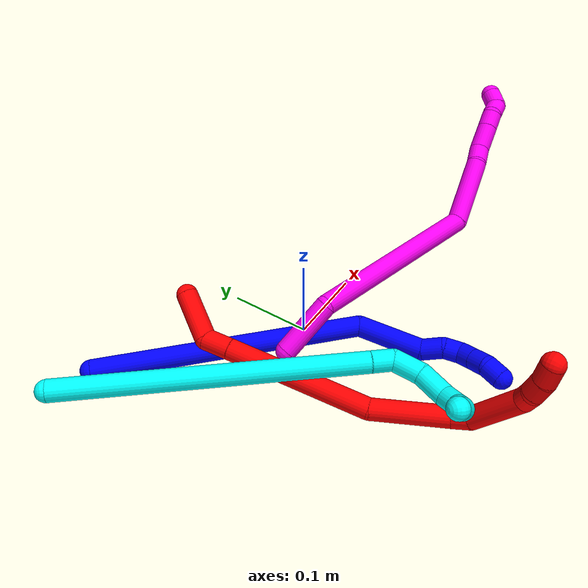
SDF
<sdf version="1.7">
 <world name="default">
  <model name="1">
   <static>0</static>
   <link name="1">
    <collision name="collision-cylinder-e_1_1_4">
     <pose>0.115929 -0.083799 0.064862 0.9121 0.830254 0.425846</pose>
     <geometry><cylinder><radius>0.0125</radius><length>0.314126</length></cylinder></geometry>
     <surface>
      <friction><ode><mu>1.16</mu><mu2>1.16</mu2><slip1>0</slip1><slip2>0</slip2></ode></friction>
      <contact><ode><kp>1e+06</kp><kd>1</kd><max_vel>0</max_vel><min_depth>0.001</min_depth></ode></contact>
     </surface>
    </collision>
    <visual name="visual-cylinder-e_1_1_4">
     <pose>0.115929 -0.083799 0.064862 0.9121 0.830254 0.425846</pose>
     <geometry><cylinder><radius>0.0125</radius><length>0.314126</length></cylinder></geometry>
     <material><ambient>0 0 1 1</ambient></material>
    </visual>
    <collision name="collision-cylinder-e_2_4_5">
     <pose>0.238741 -0.195018 0.157194 0.784486 0.175518 0.072763</pose>
     <geometry><cylinder><radius>0.0125</radius><length>0.078838</length></cylinder></geometry>
     <surface>
      <friction><ode><mu>1.16</mu><mu2>1.16</mu2><slip1>0</slip1><slip2>0</slip2></ode></friction>
      <contact><ode><kp>1e+06</kp><kd>1</kd><max_vel>0</max_vel><min_depth>0.001</min_depth></ode></contact>
     </surface>
    </collision>
    <visual name="visual-cylinder-e_2_4_5">
     <pose>0.238741 -0.195018 0.157194 0.784486 0.175518 0.072763</pose>
     <geometry><cylinder><radius>0.0125</radius><length>0.078838</length></cylinder></geometry>
     <material><ambient>0 0 1 1</ambient></material>
    </visual>
    <collision name="collision-cylinder-e_3_5_6">
     <pose>0.252108 -0.227545 0.194391 0.483431 0.533252 0.134469</pose>
     <geometry><cylinder><radius>0.0125</radius><length>0.025511</length></cylinder></geometry>
     <surface>
      <friction><ode><mu>1.16</mu><mu2>1.16</mu2><slip1>0</slip1><slip2>0</slip2></ode></friction>
      <contact><ode><kp>1e+06</kp><kd>1</kd><max_vel>0</max_vel><min_depth>0.001</min_depth></ode></contact>
     </surface>
    </collision>
    <visual name="visual-cylinder-e_3_5_6">
     <pose>0.252108 -0.227545 0.194391 0.483431 0.533252 0.134469</pose>
     <geometry><cylinder><radius>0.0125</radius><length>0.025511</length></cylinder></geometry>
     <material><ambient>0 0 1 1</ambient></material>
    </visual>
    <collision name="collision-cylinder-e_4_6_7">
     <pose>0.261624 -0.240184 0.210418 0.874201 0.299368 0.140699</pose>
     <geometry><cylinder><radius>0.0125</radius><length>0.020557</length></cylinder></geometry>
     <surface>
      <friction><ode><mu>1.16</mu><mu2>1.16</mu2><slip1>0</slip1><slip2>0</slip2></ode></friction>
      <contact><ode><kp>1e+06</kp><kd>1</kd><max_vel>0</max_vel><min_depth>0.001</min_depth></ode></contact>
     </surface>
    </collision>
    <visual name="visual-cylinder-e_4_6_7">
     <pose>0.261624 -0.240184 0.210418 0.874201 0.299368 0.140699</pose>
     <geometry><cylinder><radius>0.0125</radius><length>0.020557</length></cylinder></geometry>
     <material><ambient>0 0 1 1</ambient></material>
    </visual>
    <collision name="collision-cylinder-e_5_7_8">
     <pose>0.262576 -0.250672 0.22627 0.300043 -0.205005 -0.031095</pose>
     <geometry><cylinder><radius>0.0125</radius><length>0.020423</length></cylinder></geometry>
     <surface>
      <friction><ode><mu>1.16</mu><mu2>1.16</mu2><slip1>0</slip1><slip2>0</slip2></ode></friction>
      <contact><ode><kp>1e+06</kp><kd>1</kd><max_vel>0</max_vel><min_depth>0.001</min_depth></ode></contact>
     </surface>
    </collision>
    <visual name="visual-cylinder-e_5_7_8">
     <pose>0.262576 -0.250672 0.22627 0.300043 -0.205005 -0.031095</pose>
     <geometry><cylinder><radius>0.0125</radius><length>0.020423</length></cylinder></geometry>
     <material><ambient>0 0 1 1</ambient></material>
    </visual>
    <collision name="collision-cylinder-e_6_8_9">
     <pose>0.258176 -0.256076 0.245378 0.250825 -0.231144 -0.02927</pose>
     <geometry><cylinder><radius>0.0125</radius><length>0.02027</length></cylinder></geometry>
     <surface>
      <friction><ode><mu>1.16</mu><mu2>1.16</mu2><slip1>0</slip1><slip2>0</slip2></ode></friction>
      <contact><ode><kp>1e+06</kp><kd>1</kd><max_vel>0</max_vel><min_depth>0.001</min_depth></ode></contact>
     </surface>
    </collision>
    <visual name="visual-cylinder-e_6_8_9">
     <pose>0.258176 -0.256076 0.245378 0.250825 -0.231144 -0.02927</pose>
     <geometry><cylinder><radius>0.0125</radius><length>0.02027</length></cylinder></geometry>
     <material><ambient>0 0 1 1</ambient></material>
    </visual>
    <collision name="collision-cylinder-e_7_9_2">
     <pose>0.253202 -0.265031 0.262241 0.727573 -0.264707 -0.101289</pose>
     <geometry><cylinder><radius>0.0125</radius><length>0.020274</length></cylinder></geometry>
     <surface>
      <friction><ode><mu>1.16</mu><mu2>1.16</mu2><slip1>0</slip1><slip2>0</slip2></ode></friction>
      <contact><ode><kp>1e+06</kp><kd>1</kd><max_vel>0</max_vel><min_depth>0.001</min_depth></ode></contact>
     </surface>
    </collision>
    <visual name="visual-cylinder-e_7_9_2">
     <pose>0.253202 -0.265031 0.262241 0.727573 -0.264707 -0.101289</pose>
     <geometry><cylinder><radius>0.0125</radius><length>0.020274</length></cylinder></geometry>
     <material><ambient>0 0 1 1</ambient></material>
    </visual>
    <collision name="collision-sphere-2">
     <pose>0.25055 -0.271538 0.269548 0 -0 0</pose>
     <geometry><sphere><radius>0.0125</radius></sphere></geometry>
     <surface>
      <friction><ode><mu>1.16</mu><mu2>1.16</mu2><slip1>0</slip1><slip2>0</slip2></ode></friction>
      <contact><ode><kp>1e+06</kp><kd>1</kd><max_vel>0</max_vel><min_depth>0.001</min_depth></ode></contact>
     </surface>
    </collision>
    <visual name="visual-sphere-2">
     <pose>0.25055 -0.271538 0.269548 0 -0 0</pose>
     <geometry><sphere><radius>0.0125</radius></sphere></geometry>
     <material><ambient>0 0 1 1</ambient></material>
    </visual>
    <collision name="collision-sphere-9">
     <pose>0.255854 -0.258524 0.254935 0 -0 0</pose>
     <geometry><sphere><radius>0.0125</radius></sphere></geometry>
     <surface>
      <friction><ode><mu>1.16</mu><mu2>1.16</mu2><slip1>0</slip1><slip2>0</slip2></ode></friction>
      <contact><ode><kp>1e+06</kp><kd>1</kd><max_vel>0</max_vel><min_depth>0.001</min_depth></ode></contact>
     </surface>
    </collision>
    <visual name="visual-sphere-9">
     <pose>0.255854 -0.258524 0.254935 0 -0 0</pose>
     <geometry><sphere><radius>0.0125</radius></sphere></geometry>
     <material><ambient>0 0 1 1</ambient></material>
    </visual>
    <collision name="collision-sphere-4">
     <pose>0.231858 -0.167598 0.129724 0 -0 0</pose>
     <geometry><sphere><radius>0.0125</radius></sphere></geometry>
     <surface>
      <friction><ode><mu>1.16</mu><mu2>1.16</mu2><slip1>0</slip1><slip2>0</slip2></ode></friction>
      <contact><ode><kp>1e+06</kp><kd>1</kd><max_vel>0</max_vel><min_depth>0.001</min_depth></ode></contact>
     </surface>
    </collision>
    <visual name="visual-sphere-4">
     <pose>0.231858 -0.167598 0.129724 0 -0 0</pose>
     <geometry><sphere><radius>0.0125</radius></sphere></geometry>
     <material><ambient>0 0 1 1</ambient></material>
    </visual>
    <collision name="collision-sphere-1">
     <geometry><sphere><radius>0.0125</radius></sphere></geometry>
     <surface>
      <friction><ode><mu>1.16</mu><mu2>1.16</mu2><slip1>0</slip1><slip2>0</slip2></ode></friction>
      <contact><ode><kp>1e+06</kp><kd>1</kd><max_vel>0</max_vel><min_depth>0.001</min_depth></ode></contact>
     </surface>
    </collision>
    <visual name="visual-sphere-1">
     <geometry><sphere><radius>0.0125</radius></sphere></geometry>
     <material><ambient>0 0 1 1</ambient></material>
    </visual>
    <collision name="collision-sphere-8">
     <pose>0.260498 -0.253627 0.235821 0 -0 0</pose>
     <geometry><sphere><radius>0.0125</radius></sphere></geometry>
     <surface>
      <friction><ode><mu>1.16</mu><mu2>1.16</mu2><slip1>0</slip1><slip2>0</slip2></ode></friction>
      <contact><ode><kp>1e+06</kp><kd>1</kd><max_vel>0</max_vel><min_depth>0.001</min_depth></ode></contact>
     </surface>
    </collision>
    <visual name="visual-sphere-8">
     <pose>0.260498 -0.253627 0.235821 0 -0 0</pose>
     <geometry><sphere><radius>0.0125</radius></sphere></geometry>
     <material><ambient>0 0 1 1</ambient></material>
    </visual>
    <collision name="collision-sphere-5">
     <pose>0.245624 -0.222439 0.184665 0 -0 0</pose>
     <geometry><sphere><radius>0.0125</radius></sphere></geometry>
     <surface>
      <friction><ode><mu>1.16</mu><mu2>1.16</mu2><slip1>0</slip1><slip2>0</slip2></ode></friction>
      <contact><ode><kp>1e+06</kp><kd>1</kd><max_vel>0</max_vel><min_depth>0.001</min_depth></ode></contact>
     </surface>
    </collision>
    <visual name="visual-sphere-5">
     <pose>0.245624 -0.222439 0.184665 0 -0 0</pose>
     <geometry><sphere><radius>0.0125</radius></sphere></geometry>
     <material><ambient>0 0 1 1</ambient></material>
    </visual>
    <collision name="collision-sphere-6">
     <pose>0.258592 -0.23265 0.204116 0 -0 0</pose>
     <geometry><sphere><radius>0.0125</radius></sphere></geometry>
     <surface>
      <friction><ode><mu>1.16</mu><mu2>1.16</mu2><slip1>0</slip1><slip2>0</slip2></ode></friction>
      <contact><ode><kp>1e+06</kp><kd>1</kd><max_vel>0</max_vel><min_depth>0.001</min_depth></ode></contact>
     </surface>
    </collision>
    <visual name="visual-sphere-6">
     <pose>0.258592 -0.23265 0.204116 0 -0 0</pose>
     <geometry><sphere><radius>0.0125</radius></sphere></geometry>
     <material><ambient>0 0 1 1</ambient></material>
    </visual>
    <collision name="collision-sphere-7">
     <pose>0.264655 -0.247717 0.21672 0 -0 0</pose>
     <geometry><sphere><radius>0.0125</radius></sphere></geometry>
     <surface>
      <friction><ode><mu>1.16</mu><mu2>1.16</mu2><slip1>0</slip1><slip2>0</slip2></ode></friction>
      <contact><ode><kp>1e+06</kp><kd>1</kd><max_vel>0</max_vel><min_depth>0.001</min_depth></ode></contact>
     </surface>
    </collision>
    <visual name="visual-sphere-7">
     <pose>0.264655 -0.247717 0.21672 0 -0 0</pose>
     <geometry><sphere><radius>0.0125</radius></sphere></geometry>
     <material><ambient>0 0 1 1</ambient></material>
    </visual>
    <inertial>
     <pose>0.165555 -0.136248 0.113928 0 -0 0</pose>
     <mass>0.5</mass>
     <inertia>
      <ixx>0.002392</ixx>
      <ixy>0</ixy>
      <ixz>0</ixz>
      <iyy>0.002817</iyy>
      <iyz>0</iyz>
      <izz>-0.000484</izz>
     </inertia>
    </inertial>
   </link>
   <pose>-0.194068 0.160653 0.011495 0.882507 -0.218319 -0.061393</pose>
  </model>
  <model name="2">
   <static>0</static>
   <link name="2">
    <collision name="collision-cylinder-e_1_1_4">
     <pose>-0.017502 -0.000543 0.024402 0.02223 -0.622085 -0.007147</pose>
     <geometry><cylinder><radius>0.0125</radius><length>0.060068</length></cylinder></geometry>
     <surface>
      <friction><ode><mu>1.16</mu><mu2>1.16</mu2><slip1>0</slip1><slip2>0</slip2></ode></friction>
      <contact><ode><kp>1e+06</kp><kd>1</kd><max_vel>0</max_vel><min_depth>0.001</min_depth></ode></contact>
     </surface>
    </collision>
    <visual name="visual-cylinder-e_1_1_4">
     <pose>-0.017502 -0.000543 0.024402 0.02223 -0.622085 -0.007147</pose>
     <geometry><cylinder><radius>0.0125</radius><length>0.060068</length></cylinder></geometry>
     <material><ambient>1 0 0 1</ambient></material>
    </visual>
    <collision name="collision-cylinder-e_2_4_5">
     <pose>-0.034318 -0.005757 0.063629 0.305264 0.044051 0.006777</pose>
     <geometry><cylinder><radius>0.0125</radius><length>0.031119</length></cylinder></geometry>
     <surface>
      <friction><ode><mu>1.16</mu><mu2>1.16</mu2><slip1>0</slip1><slip2>0</slip2></ode></friction>
      <contact><ode><kp>1e+06</kp><kd>1</kd><max_vel>0</max_vel><min_depth>0.001</min_depth></ode></contact>
     </surface>
    </collision>
    <visual name="visual-cylinder-e_2_4_5">
     <pose>-0.034318 -0.005757 0.063629 0.305264 0.044051 0.006777</pose>
     <geometry><cylinder><radius>0.0125</radius><length>0.031119</length></cylinder></geometry>
     <material><ambient>1 0 0 1</ambient></material>
    </visual>
    <collision name="collision-cylinder-e_3_5_6">
     <pose>-0.031481 -0.040015 0.156982 0.360311 0.025644 0.004671</pose>
     <geometry><cylinder><radius>0.0125</radius><length>0.167886</length></cylinder></geometry>
     <surface>
      <friction><ode><mu>1.16</mu><mu2>1.16</mu2><slip1>0</slip1><slip2>0</slip2></ode></friction>
      <contact><ode><kp>1e+06</kp><kd>1</kd><max_vel>0</max_vel><min_depth>0.001</min_depth></ode></contact>
     </surface>
    </collision>
    <visual name="visual-cylinder-e_3_5_6">
     <pose>-0.031481 -0.040015 0.156982 0.360311 0.025644 0.004671</pose>
     <geometry><cylinder><radius>0.0125</radius><length>0.167886</length></cylinder></geometry>
     <material><ambient>1 0 0 1</ambient></material>
    </visual>
    <collision name="collision-cylinder-e_4_6_7">
     <pose>-0.015305 -0.087535 0.273129 0.444873 0.324589 0.074033</pose>
     <geometry><cylinder><radius>0.0125</radius><length>0.087945</length></cylinder></geometry>
     <surface>
      <friction><ode><mu>1.16</mu><mu2>1.16</mu2><slip1>0</slip1><slip2>0</slip2></ode></friction>
      <contact><ode><kp>1e+06</kp><kd>1</kd><max_vel>0</max_vel><min_depth>0.001</min_depth></ode></contact>
     </surface>
    </collision>
    <visual name="visual-cylinder-e_4_6_7">
     <pose>-0.015305 -0.087535 0.273129 0.444873 0.324589 0.074033</pose>
     <geometry><cylinder><radius>0.0125</radius><length>0.087945</length></cylinder></geometry>
     <material><ambient>1 0 0 1</ambient></material>
    </visual>
    <collision name="collision-cylinder-e_5_7_8">
     <pose>0.002676 -0.106318 0.320192 0.089483 0.395407 0.017937</pose>
     <geometry><cylinder><radius>0.0125</radius><length>0.020547</length></cylinder></geometry>
     <surface>
      <friction><ode><mu>1.16</mu><mu2>1.16</mu2><slip1>0</slip1><slip2>0</slip2></ode></friction>
      <contact><ode><kp>1e+06</kp><kd>1</kd><max_vel>0</max_vel><min_depth>0.001</min_depth></ode></contact>
     </surface>
    </collision>
    <visual name="visual-cylinder-e_5_7_8">
     <pose>0.002676 -0.106318 0.320192 0.089483 0.395407 0.017937</pose>
     <geometry><cylinder><radius>0.0125</radius><length>0.020547</length></cylinder></geometry>
     <material><ambient>1 0 0 1</ambient></material>
    </visual>
    <collision name="collision-cylinder-e_6_8_9">
     <pose>0.028715 -0.094807 0.353643 -0.475359 0.685473 -0.172456</pose>
     <geometry><cylinder><radius>0.0125</radius><length>0.069764</length></cylinder></geometry>
     <surface>
      <friction><ode><mu>1.16</mu><mu2>1.16</mu2><slip1>0</slip1><slip2>0</slip2></ode></friction>
      <contact><ode><kp>1e+06</kp><kd>1</kd><max_vel>0</max_vel><min_depth>0.001</min_depth></ode></contact>
     </surface>
    </collision>
    <visual name="visual-cylinder-e_6_8_9">
     <pose>0.028715 -0.094807 0.353643 -0.475359 0.685473 -0.172456</pose>
     <geometry><cylinder><radius>0.0125</radius><length>0.069764</length></cylinder></geometry>
     <material><ambient>1 0 0 1</ambient></material>
    </visual>
    <collision name="collision-cylinder-e_7_9_10">
     <pose>0.056323 -0.074516 0.382066 -1.06311 0.546816 -0.326849</pose>
     <geometry><cylinder><radius>0.0125</radius><length>0.021256</length></cylinder></geometry>
     <surface>
      <friction><ode><mu>1.16</mu><mu2>1.16</mu2><slip1>0</slip1><slip2>0</slip2></ode></friction>
      <contact><ode><kp>1e+06</kp><kd>1</kd><max_vel>0</max_vel><min_depth>0.001</min_depth></ode></contact>
     </surface>
    </collision>
    <visual name="visual-cylinder-e_7_9_10">
     <pose>0.056323 -0.074516 0.382066 -1.06311 0.546816 -0.326849</pose>
     <geometry><cylinder><radius>0.0125</radius><length>0.021256</length></cylinder></geometry>
     <material><ambient>1 0 0 1</ambient></material>
    </visual>
    <collision name="collision-cylinder-e_8_10_11">
     <pose>0.069616 -0.061539 0.390255 -0.928247 0.889295 -0.468288</pose>
     <geometry><cylinder><radius>0.0125</radius><length>0.020001</length></cylinder></geometry>
     <surface>
      <friction><ode><mu>1.16</mu><mu2>1.16</mu2><slip1>0</slip1><slip2>0</slip2></ode></friction>
      <contact><ode><kp>1e+06</kp><kd>1</kd><max_vel>0</max_vel><min_depth>0.001</min_depth></ode></contact>
     </surface>
    </collision>
    <visual name="visual-cylinder-e_8_10_11">
     <pose>0.069616 -0.061539 0.390255 -0.928247 0.889295 -0.468288</pose>
     <geometry><cylinder><radius>0.0125</radius><length>0.020001</length></cylinder></geometry>
     <material><ambient>1 0 0 1</ambient></material>
    </visual>
    <collision name="collision-cylinder-e_9_11_2">
     <pose>0.086529 -0.051293 0.396007 -1.20762 1.02415 -0.739705</pose>
     <geometry><cylinder><radius>0.0125</radius><length>0.021413</length></cylinder></geometry>
     <surface>
      <friction><ode><mu>1.16</mu><mu2>1.16</mu2><slip1>0</slip1><slip2>0</slip2></ode></friction>
      <contact><ode><kp>1e+06</kp><kd>1</kd><max_vel>0</max_vel><min_depth>0.001</min_depth></ode></contact>
     </surface>
    </collision>
    <visual name="visual-cylinder-e_9_11_2">
     <pose>0.086529 -0.051293 0.396007 -1.20762 1.02415 -0.739705</pose>
     <geometry><cylinder><radius>0.0125</radius><length>0.021413</length></cylinder></geometry>
     <material><ambient>1 0 0 1</ambient></material>
    </visual>
    <collision name="collision-sphere-2">
     <pose>0.095675 -0.04609 0.397984 0 -0 0</pose>
     <geometry><sphere><radius>0.0125</radius></sphere></geometry>
     <surface>
      <friction><ode><mu>1.16</mu><mu2>1.16</mu2><slip1>0</slip1><slip2>0</slip2></ode></friction>
      <contact><ode><kp>1e+06</kp><kd>1</kd><max_vel>0</max_vel><min_depth>0.001</min_depth></ode></contact>
     </surface>
    </collision>
    <visual name="visual-sphere-2">
     <pose>0.095675 -0.04609 0.397984 0 -0 0</pose>
     <geometry><sphere><radius>0.0125</radius></sphere></geometry>
     <material><ambient>1 0 0 1</ambient></material>
    </visual>
    <collision name="collision-sphere-11">
     <pose>0.077383 -0.056495 0.39403 0 -0 0</pose>
     <geometry><sphere><radius>0.0125</radius></sphere></geometry>
     <surface>
      <friction><ode><mu>1.16</mu><mu2>1.16</mu2><slip1>0</slip1><slip2>0</slip2></ode></friction>
      <contact><ode><kp>1e+06</kp><kd>1</kd><max_vel>0</max_vel><min_depth>0.001</min_depth></ode></contact>
     </surface>
    </collision>
    <visual name="visual-sphere-11">
     <pose>0.077383 -0.056495 0.39403 0 -0 0</pose>
     <geometry><sphere><radius>0.0125</radius></sphere></geometry>
     <material><ambient>1 0 0 1</ambient></material>
    </visual>
    <collision name="collision-sphere-10">
     <pose>0.061849 -0.066582 0.386479 0 -0 0</pose>
     <geometry><sphere><radius>0.0125</radius></sphere></geometry>
     <surface>
      <friction><ode><mu>1.16</mu><mu2>1.16</mu2><slip1>0</slip1><slip2>0</slip2></ode></friction>
      <contact><ode><kp>1e+06</kp><kd>1</kd><max_vel>0</max_vel><min_depth>0.001</min_depth></ode></contact>
     </surface>
    </collision>
    <visual name="visual-sphere-10">
     <pose>0.061849 -0.066582 0.386479 0 -0 0</pose>
     <geometry><sphere><radius>0.0125</radius></sphere></geometry>
     <material><ambient>1 0 0 1</ambient></material>
    </visual>
    <collision name="collision-sphere-9">
     <pose>0.050796 -0.082449 0.377652 0 -0 0</pose>
     <geometry><sphere><radius>0.0125</radius></sphere></geometry>
     <surface>
      <friction><ode><mu>1.16</mu><mu2>1.16</mu2><slip1>0</slip1><slip2>0</slip2></ode></friction>
      <contact><ode><kp>1e+06</kp><kd>1</kd><max_vel>0</max_vel><min_depth>0.001</min_depth></ode></contact>
     </surface>
    </collision>
    <visual name="visual-sphere-9">
     <pose>0.050796 -0.082449 0.377652 0 -0 0</pose>
     <geometry><sphere><radius>0.0125</radius></sphere></geometry>
     <material><ambient>1 0 0 1</ambient></material>
    </visual>
    <collision name="collision-sphere-4">
     <pose>-0.035004 -0.001085 0.048803 0 -0 0</pose>
     <geometry><sphere><radius>0.0125</radius></sphere></geometry>
     <surface>
      <friction><ode><mu>1.16</mu><mu2>1.16</mu2><slip1>0</slip1><slip2>0</slip2></ode></friction>
      <contact><ode><kp>1e+06</kp><kd>1</kd><max_vel>0</max_vel><min_depth>0.001</min_depth></ode></contact>
     </surface>
    </collision>
    <visual name="visual-sphere-4">
     <pose>-0.035004 -0.001085 0.048803 0 -0 0</pose>
     <geometry><sphere><radius>0.0125</radius></sphere></geometry>
     <material><ambient>1 0 0 1</ambient></material>
    </visual>
    <collision name="collision-sphere-1">
     <geometry><sphere><radius>0.0125</radius></sphere></geometry>
     <surface>
      <friction><ode><mu>1.16</mu><mu2>1.16</mu2><slip1>0</slip1><slip2>0</slip2></ode></friction>
      <contact><ode><kp>1e+06</kp><kd>1</kd><max_vel>0</max_vel><min_depth>0.001</min_depth></ode></contact>
     </surface>
    </collision>
    <visual name="visual-sphere-1">
     <geometry><sphere><radius>0.0125</radius></sphere></geometry>
     <material><ambient>1 0 0 1</ambient></material>
    </visual>
    <collision name="collision-sphere-8">
     <pose>0.006633 -0.107165 0.329635 0 -0 0</pose>
     <geometry><sphere><radius>0.0125</radius></sphere></geometry>
     <surface>
      <friction><ode><mu>1.16</mu><mu2>1.16</mu2><slip1>0</slip1><slip2>0</slip2></ode></friction>
      <contact><ode><kp>1e+06</kp><kd>1</kd><max_vel>0</max_vel><min_depth>0.001</min_depth></ode></contact>
     </surface>
    </collision>
    <visual name="visual-sphere-8">
     <pose>0.006633 -0.107165 0.329635 0 -0 0</pose>
     <geometry><sphere><radius>0.0125</radius></sphere></geometry>
     <material><ambient>1 0 0 1</ambient></material>
    </visual>
    <collision name="collision-sphere-5">
     <pose>-0.033633 -0.010429 0.078455 0 -0 0</pose>
     <geometry><sphere><radius>0.0125</radius></sphere></geometry>
     <surface>
      <friction><ode><mu>1.16</mu><mu2>1.16</mu2><slip1>0</slip1><slip2>0</slip2></ode></friction>
      <contact><ode><kp>1e+06</kp><kd>1</kd><max_vel>0</max_vel><min_depth>0.001</min_depth></ode></contact>
     </surface>
    </collision>
    <visual name="visual-sphere-5">
     <pose>-0.033633 -0.010429 0.078455 0 -0 0</pose>
     <geometry><sphere><radius>0.0125</radius></sphere></geometry>
     <material><ambient>1 0 0 1</ambient></material>
    </visual>
    <collision name="collision-sphere-6">
     <pose>-0.029328 -0.0696 0.235509 0 -0 0</pose>
     <geometry><sphere><radius>0.0125</radius></sphere></geometry>
     <surface>
      <friction><ode><mu>1.16</mu><mu2>1.16</mu2><slip1>0</slip1><slip2>0</slip2></ode></friction>
      <contact><ode><kp>1e+06</kp><kd>1</kd><max_vel>0</max_vel><min_depth>0.001</min_depth></ode></contact>
     </surface>
    </collision>
    <visual name="visual-sphere-6">
     <pose>-0.029328 -0.0696 0.235509 0 -0 0</pose>
     <geometry><sphere><radius>0.0125</radius></sphere></geometry>
     <material><ambient>1 0 0 1</ambient></material>
    </visual>
    <collision name="collision-sphere-7">
     <pose>-0.001281 -0.105471 0.310749 0 -0 0</pose>
     <geometry><sphere><radius>0.0125</radius></sphere></geometry>
     <surface>
      <friction><ode><mu>1.16</mu><mu2>1.16</mu2><slip1>0</slip1><slip2>0</slip2></ode></friction>
      <contact><ode><kp>1e+06</kp><kd>1</kd><max_vel>0</max_vel><min_depth>0.001</min_depth></ode></contact>
     </surface>
    </collision>
    <visual name="visual-sphere-7">
     <pose>-0.001281 -0.105471 0.310749 0 -0 0</pose>
     <geometry><sphere><radius>0.0125</radius></sphere></geometry>
     <material><ambient>1 0 0 1</ambient></material>
    </visual>
    <inertial>
     <pose>-0.0045 -0.054679 0.218957 0 -0 0</pose>
     <mass>0.5</mass>
     <inertia>
      <ixx>0.000514</ixx>
      <ixy>0</ixy>
      <ixz>0</ixz>
      <iyy>0.000484</iyy>
      <iyz>0</iyz>
      <izz>0.000143</izz>
     </inertia>
    </inertial>
   </link>
   <pose>-0.074009 0.113885 0.058627 1.43693 -0.809067 -0.007066</pose>
  </model>
  <model name="3">
   <static>0</static>
   <link name="3">
    <collision name="collision-cylinder-e_1_1_4">
     <pose>0.017596 -0.048975 -0.163136 2.84994 0.102943 0.67473</pose>
     <geometry><cylinder><radius>0.0125</radius><length>0.34247</length></cylinder></geometry>
     <surface>
      <friction><ode><mu>1.16</mu><mu2>1.16</mu2><slip1>0</slip1><slip2>0</slip2></ode></friction>
      <contact><ode><kp>1e+06</kp><kd>1</kd><max_vel>0</max_vel><min_depth>0.001</min_depth></ode></contact>
     </surface>
    </collision>
    <visual name="visual-cylinder-e_1_1_4">
     <pose>0.017596 -0.048975 -0.163136 2.84994 0.102943 0.67473</pose>
     <geometry><cylinder><radius>0.0125</radius><length>0.34247</length></cylinder></geometry>
     <material><ambient>0.003922 1 0.996078 1</ambient></material>
    </visual>
    <collision name="collision-cylinder-e_2_4_5">
     <pose>0.036246 -0.1009 -0.338828 2.91084 0.081471 0.676352</pose>
     <geometry><cylinder><radius>0.0125</radius><length>0.025884</length></cylinder></geometry>
     <surface>
      <friction><ode><mu>1.16</mu><mu2>1.16</mu2><slip1>0</slip1><slip2>0</slip2></ode></friction>
      <contact><ode><kp>1e+06</kp><kd>1</kd><max_vel>0</max_vel><min_depth>0.001</min_depth></ode></contact>
     </surface>
    </collision>
    <visual name="visual-cylinder-e_2_4_5">
     <pose>0.036246 -0.1009 -0.338828 2.91084 0.081471 0.676352</pose>
     <geometry><cylinder><radius>0.0125</radius><length>0.025884</length></cylinder></geometry>
     <material><ambient>0.003922 1 0.996078 1</ambient></material>
    </visual>
    <collision name="collision-cylinder-e_3_5_6">
     <pose>0.033401 -0.116398 -0.361907 2.26857 -0.233712 -0.49302</pose>
     <geometry><cylinder><radius>0.0125</radius><length>0.033667</length></cylinder></geometry>
     <surface>
      <friction><ode><mu>1.16</mu><mu2>1.16</mu2><slip1>0</slip1><slip2>0</slip2></ode></friction>
      <contact><ode><kp>1e+06</kp><kd>1</kd><max_vel>0</max_vel><min_depth>0.001</min_depth></ode></contact>
     </surface>
    </collision>
    <visual name="visual-cylinder-e_3_5_6">
     <pose>0.033401 -0.116398 -0.361907 2.26857 -0.233712 -0.49302</pose>
     <geometry><cylinder><radius>0.0125</radius><length>0.033667</length></cylinder></geometry>
     <material><ambient>0.003922 1 0.996078 1</ambient></material>
    </visual>
    <collision name="collision-cylinder-e_4_6_7">
     <pose>0.023014 -0.143701 -0.378597 1.96678 -0.38543 -0.570197</pose>
     <geometry><cylinder><radius>0.0125</radius><length>0.034515</length></cylinder></geometry>
     <surface>
      <friction><ode><mu>1.16</mu><mu2>1.16</mu2><slip1>0</slip1><slip2>0</slip2></ode></friction>
      <contact><ode><kp>1e+06</kp><kd>1</kd><max_vel>0</max_vel><min_depth>0.001</min_depth></ode></contact>
     </surface>
    </collision>
    <visual name="visual-cylinder-e_4_6_7">
     <pose>0.023014 -0.143701 -0.378597 1.96678 -0.38543 -0.570197</pose>
     <geometry><cylinder><radius>0.0125</radius><length>0.034515</length></cylinder></geometry>
     <material><ambient>0.003922 1 0.996078 1</ambient></material>
    </visual>
    <collision name="collision-cylinder-e_5_7_8">
     <pose>0.016472 -0.169401 -0.38562 1.64877 -0.004972 -0.005376</pose>
     <geometry><cylinder><radius>0.0125</radius><length>0.021959</length></cylinder></geometry>
     <surface>
      <friction><ode><mu>1.16</mu><mu2>1.16</mu2><slip1>0</slip1><slip2>0</slip2></ode></friction>
      <contact><ode><kp>1e+06</kp><kd>1</kd><max_vel>0</max_vel><min_depth>0.001</min_depth></ode></contact>
     </surface>
    </collision>
    <visual name="visual-cylinder-e_5_7_8">
     <pose>0.016472 -0.169401 -0.38562 1.64877 -0.004972 -0.005376</pose>
     <geometry><cylinder><radius>0.0125</radius><length>0.021959</length></cylinder></geometry>
     <material><ambient>0.003922 1 0.996078 1</ambient></material>
    </visual>
    <collision name="collision-cylinder-e_6_8_9">
     <pose>0.0203 -0.189225 -0.381925 1.0971 0.371233 0.228507</pose>
     <geometry><cylinder><radius>0.0125</radius><length>0.02141</length></cylinder></geometry>
     <surface>
      <friction><ode><mu>1.16</mu><mu2>1.16</mu2><slip1>0</slip1><slip2>0</slip2></ode></friction>
      <contact><ode><kp>1e+06</kp><kd>1</kd><max_vel>0</max_vel><min_depth>0.001</min_depth></ode></contact>
     </surface>
    </collision>
    <visual name="visual-cylinder-e_6_8_9">
     <pose>0.0203 -0.189225 -0.381925 1.0971 0.371233 0.228507</pose>
     <geometry><cylinder><radius>0.0125</radius><length>0.02141</length></cylinder></geometry>
     <material><ambient>0.003922 1 0.996078 1</ambient></material>
    </visual>
    <collision name="collision-cylinder-e_7_9_2">
     <pose>0.028569 -0.203875 -0.370417 0.692702 0.451628 0.165442</pose>
     <geometry><cylinder><radius>0.0125</radius><length>0.020095</length></cylinder></geometry>
     <surface>
      <friction><ode><mu>1.16</mu><mu2>1.16</mu2><slip1>0</slip1><slip2>0</slip2></ode></friction>
      <contact><ode><kp>1e+06</kp><kd>1</kd><max_vel>0</max_vel><min_depth>0.001</min_depth></ode></contact>
     </surface>
    </collision>
    <visual name="visual-cylinder-e_7_9_2">
     <pose>0.028569 -0.203875 -0.370417 0.692702 0.451628 0.165442</pose>
     <geometry><cylinder><radius>0.0125</radius><length>0.020095</length></cylinder></geometry>
     <material><ambient>0.003922 1 0.996078 1</ambient></material>
    </visual>
    <collision name="collision-sphere-2">
     <pose>0.032954 -0.209648 -0.363461 0 -0 0</pose>
     <geometry><sphere><radius>0.0125</radius></sphere></geometry>
     <surface>
      <friction><ode><mu>1.16</mu><mu2>1.16</mu2><slip1>0</slip1><slip2>0</slip2></ode></friction>
      <contact><ode><kp>1e+06</kp><kd>1</kd><max_vel>0</max_vel><min_depth>0.001</min_depth></ode></contact>
     </surface>
    </collision>
    <visual name="visual-sphere-2">
     <pose>0.032954 -0.209648 -0.363461 0 -0 0</pose>
     <geometry><sphere><radius>0.0125</radius></sphere></geometry>
     <material><ambient>0.003922 1 0.996078 1</ambient></material>
    </visual>
    <collision name="collision-sphere-9">
     <pose>0.024184 -0.198102 -0.377374 0 -0 0</pose>
     <geometry><sphere><radius>0.0125</radius></sphere></geometry>
     <surface>
      <friction><ode><mu>1.16</mu><mu2>1.16</mu2><slip1>0</slip1><slip2>0</slip2></ode></friction>
      <contact><ode><kp>1e+06</kp><kd>1</kd><max_vel>0</max_vel><min_depth>0.001</min_depth></ode></contact>
     </surface>
    </collision>
    <visual name="visual-sphere-9">
     <pose>0.024184 -0.198102 -0.377374 0 -0 0</pose>
     <geometry><sphere><radius>0.0125</radius></sphere></geometry>
     <material><ambient>0.003922 1 0.996078 1</ambient></material>
    </visual>
    <collision name="collision-sphere-4">
     <pose>0.035193 -0.09795 -0.326272 0 -0 0</pose>
     <geometry><sphere><radius>0.0125</radius></sphere></geometry>
     <surface>
      <friction><ode><mu>1.16</mu><mu2>1.16</mu2><slip1>0</slip1><slip2>0</slip2></ode></friction>
      <contact><ode><kp>1e+06</kp><kd>1</kd><max_vel>0</max_vel><min_depth>0.001</min_depth></ode></contact>
     </surface>
    </collision>
    <visual name="visual-sphere-4">
     <pose>0.035193 -0.09795 -0.326272 0 -0 0</pose>
     <geometry><sphere><radius>0.0125</radius></sphere></geometry>
     <material><ambient>0.003922 1 0.996078 1</ambient></material>
    </visual>
    <collision name="collision-sphere-1">
     <geometry><sphere><radius>0.0125</radius></sphere></geometry>
     <surface>
      <friction><ode><mu>1.16</mu><mu2>1.16</mu2><slip1>0</slip1><slip2>0</slip2></ode></friction>
      <contact><ode><kp>1e+06</kp><kd>1</kd><max_vel>0</max_vel><min_depth>0.001</min_depth></ode></contact>
     </surface>
    </collision>
    <visual name="visual-sphere-1">
     <geometry><sphere><radius>0.0125</radius></sphere></geometry>
     <material><ambient>0.003922 1 0.996078 1</ambient></material>
    </visual>
    <collision name="collision-sphere-8">
     <pose>0.016417 -0.180347 -0.386475 0 -0 0</pose>
     <geometry><sphere><radius>0.0125</radius></sphere></geometry>
     <surface>
      <friction><ode><mu>1.16</mu><mu2>1.16</mu2><slip1>0</slip1><slip2>0</slip2></ode></friction>
      <contact><ode><kp>1e+06</kp><kd>1</kd><max_vel>0</max_vel><min_depth>0.001</min_depth></ode></contact>
     </surface>
    </collision>
    <visual name="visual-sphere-8">
     <pose>0.016417 -0.180347 -0.386475 0 -0 0</pose>
     <geometry><sphere><radius>0.0125</radius></sphere></geometry>
     <material><ambient>0.003922 1 0.996078 1</ambient></material>
    </visual>
    <collision name="collision-sphere-5">
     <pose>0.037299 -0.10385 -0.351385 0 -0 0</pose>
     <geometry><sphere><radius>0.0125</radius></sphere></geometry>
     <surface>
      <friction><ode><mu>1.16</mu><mu2>1.16</mu2><slip1>0</slip1><slip2>0</slip2></ode></friction>
      <contact><ode><kp>1e+06</kp><kd>1</kd><max_vel>0</max_vel><min_depth>0.001</min_depth></ode></contact>
     </surface>
    </collision>
    <visual name="visual-sphere-5">
     <pose>0.037299 -0.10385 -0.351385 0 -0 0</pose>
     <geometry><sphere><radius>0.0125</radius></sphere></geometry>
     <material><ambient>0.003922 1 0.996078 1</ambient></material>
    </visual>
    <collision name="collision-sphere-6">
     <pose>0.029502 -0.128947 -0.372429 0 -0 0</pose>
     <geometry><sphere><radius>0.0125</radius></sphere></geometry>
     <surface>
      <friction><ode><mu>1.16</mu><mu2>1.16</mu2><slip1>0</slip1><slip2>0</slip2></ode></friction>
      <contact><ode><kp>1e+06</kp><kd>1</kd><max_vel>0</max_vel><min_depth>0.001</min_depth></ode></contact>
     </surface>
    </collision>
    <visual name="visual-sphere-6">
     <pose>0.029502 -0.128947 -0.372429 0 -0 0</pose>
     <geometry><sphere><radius>0.0125</radius></sphere></geometry>
     <material><ambient>0.003922 1 0.996078 1</ambient></material>
    </visual>
    <collision name="collision-sphere-7">
     <pose>0.016526 -0.158455 -0.384765 0 -0 0</pose>
     <geometry><sphere><radius>0.0125</radius></sphere></geometry>
     <surface>
      <friction><ode><mu>1.16</mu><mu2>1.16</mu2><slip1>0</slip1><slip2>0</slip2></ode></friction>
      <contact><ode><kp>1e+06</kp><kd>1</kd><max_vel>0</max_vel><min_depth>0.001</min_depth></ode></contact>
     </surface>
    </collision>
    <visual name="visual-sphere-7">
     <pose>0.016526 -0.158455 -0.384765 0 -0 0</pose>
     <geometry><sphere><radius>0.0125</radius></sphere></geometry>
     <material><ambient>0.003922 1 0.996078 1</ambient></material>
    </visual>
    <inertial>
     <pose>0.020507 -0.080262 -0.227959 0 -0 0</pose>
     <mass>0.5</mass>
     <inertia>
      <ixx>0.004713</ixx>
      <ixy>0</ixy>
      <ixz>0</ixz>
      <iyy>-0.000385</iyy>
      <iyz>0</iyz>
      <izz>0.000601</izz>
     </inertia>
    </inertial>
   </link>
   <pose>-0.258185 0.150401 0.048371 -1.01133 -1.16983 0.417015</pose>
  </model>
  <model name="10">
   <static>0</static>
   <link name="10">
    <collision name="collision-cylinder-e_1_1_4">
     <pose>0.001028 -0.000446 0.034587 0.012896 0.029701 0.000192</pose>
     <geometry><cylinder><radius>0.0125</radius><length>0.069211</length></cylinder></geometry>
     <surface>
      <friction><ode><mu>1.16</mu><mu2>1.16</mu2><slip1>0</slip1><slip2>0</slip2></ode></friction>
      <contact><ode><kp>1e+06</kp><kd>1</kd><max_vel>0</max_vel><min_depth>0.001</min_depth></ode></contact>
     </surface>
    </collision>
    <visual name="visual-cylinder-e_1_1_4">
     <pose>0.001028 -0.000446 0.034587 0.012896 0.029701 0.000192</pose>
     <geometry><cylinder><radius>0.0125</radius><length>0.069211</length></cylinder></geometry>
     <material><ambient>1 0 0.964706 1</ambient></material>
    </visual>
    <collision name="collision-cylinder-e_2_4_5">
     <pose>0.060899 0.020521 0.161162 -0.228707 0.557184 -0.06568</pose>
     <geometry><cylinder><radius>0.0125</radius><length>0.222557</length></cylinder></geometry>
     <surface>
      <friction><ode><mu>1.16</mu><mu2>1.16</mu2><slip1>0</slip1><slip2>0</slip2></ode></friction>
      <contact><ode><kp>1e+06</kp><kd>1</kd><max_vel>0</max_vel><min_depth>0.001</min_depth></ode></contact>
     </surface>
    </collision>
    <visual name="visual-cylinder-e_2_4_5">
     <pose>0.060899 0.020521 0.161162 -0.228707 0.557184 -0.06568</pose>
     <geometry><cylinder><radius>0.0125</radius><length>0.222557</length></cylinder></geometry>
     <material><ambient>1 0 0.964706 1</ambient></material>
    </visual>
    <collision name="collision-cylinder-e_3_5_6">
     <pose>0.117741 0.06049 0.292918 -0.436591 -0.045579 0.010112</pose>
     <geometry><cylinder><radius>0.0125</radius><length>0.087859</length></cylinder></geometry>
     <surface>
      <friction><ode><mu>1.16</mu><mu2>1.16</mu2><slip1>0</slip1><slip2>0</slip2></ode></friction>
      <contact><ode><kp>1e+06</kp><kd>1</kd><max_vel>0</max_vel><min_depth>0.001</min_depth></ode></contact>
     </surface>
    </collision>
    <visual name="visual-cylinder-e_3_5_6">
     <pose>0.117741 0.06049 0.292918 -0.436591 -0.045579 0.010112</pose>
     <geometry><cylinder><radius>0.0125</radius><length>0.087859</length></cylinder></geometry>
     <material><ambient>1 0 0.964706 1</ambient></material>
    </visual>
    <collision name="collision-cylinder-e_4_6_7">
     <pose>0.116962 0.086512 0.342056 -0.672762 0.101623 -0.035562</pose>
     <geometry><cylinder><radius>0.0125</radius><length>0.024086</length></cylinder></geometry>
     <surface>
      <friction><ode><mu>1.16</mu><mu2>1.16</mu2><slip1>0</slip1><slip2>0</slip2></ode></friction>
      <contact><ode><kp>1e+06</kp><kd>1</kd><max_vel>0</max_vel><min_depth>0.001</min_depth></ode></contact>
     </surface>
    </collision>
    <visual name="visual-cylinder-e_4_6_7">
     <pose>0.116962 0.086512 0.342056 -0.672762 0.101623 -0.035562</pose>
     <geometry><cylinder><radius>0.0125</radius><length>0.024086</length></cylinder></geometry>
     <material><ambient>1 0 0.964706 1</ambient></material>
    </visual>
    <collision name="collision-cylinder-e_5_7_8">
     <pose>0.116801 0.100164 0.367046 -0.37703 -0.082117 0.015675</pose>
     <geometry><cylinder><radius>0.0125</radius><length>0.033714</length></cylinder></geometry>
     <surface>
      <friction><ode><mu>1.16</mu><mu2>1.16</mu2><slip1>0</slip1><slip2>0</slip2></ode></friction>
      <contact><ode><kp>1e+06</kp><kd>1</kd><max_vel>0</max_vel><min_depth>0.001</min_depth></ode></contact>
     </surface>
    </collision>
    <visual name="visual-cylinder-e_5_7_8">
     <pose>0.116801 0.100164 0.367046 -0.37703 -0.082117 0.015675</pose>
     <geometry><cylinder><radius>0.0125</radius><length>0.033714</length></cylinder></geometry>
     <material><ambient>1 0 0.964706 1</ambient></material>
    </visual>
    <collision name="collision-cylinder-e_6_8_9">
     <pose>0.11458 0.110327 0.392381 -0.388697 -0.079661 0.015688</pose>
     <geometry><cylinder><radius>0.0125</radius><length>0.021062</length></cylinder></geometry>
     <surface>
      <friction><ode><mu>1.16</mu><mu2>1.16</mu2><slip1>0</slip1><slip2>0</slip2></ode></friction>
      <contact><ode><kp>1e+06</kp><kd>1</kd><max_vel>0</max_vel><min_depth>0.001</min_depth></ode></contact>
     </surface>
    </collision>
    <visual name="visual-cylinder-e_6_8_9">
     <pose>0.11458 0.110327 0.392381 -0.388697 -0.079661 0.015688</pose>
     <geometry><cylinder><radius>0.0125</radius><length>0.021062</length></cylinder></geometry>
     <material><ambient>1 0 0.964706 1</ambient></material>
    </visual>
    <collision name="collision-cylinder-e_7_9_10">
     <pose>0.116786 0.119915 0.410043 -0.614649 0.303269 -0.09692</pose>
     <geometry><cylinder><radius>0.0125</radius><length>0.020385</length></cylinder></geometry>
     <surface>
      <friction><ode><mu>1.16</mu><mu2>1.16</mu2><slip1>0</slip1><slip2>0</slip2></ode></friction>
      <contact><ode><kp>1e+06</kp><kd>1</kd><max_vel>0</max_vel><min_depth>0.001</min_depth></ode></contact>
     </surface>
    </collision>
    <visual name="visual-cylinder-e_7_9_10">
     <pose>0.116786 0.119915 0.410043 -0.614649 0.303269 -0.09692</pose>
     <geometry><cylinder><radius>0.0125</radius><length>0.020385</length></cylinder></geometry>
     <material><ambient>1 0 0.964706 1</ambient></material>
    </visual>
    <collision name="collision-cylinder-e_8_10_2">
     <pose>0.116748 0.13407 0.42338 -1.00801 -0.296099 0.164137</pose>
     <geometry><cylinder><radius>0.0125</radius><length>0.021126</length></cylinder></geometry>
     <surface>
      <friction><ode><mu>1.16</mu><mu2>1.16</mu2><slip1>0</slip1><slip2>0</slip2></ode></friction>
      <contact><ode><kp>1e+06</kp><kd>1</kd><max_vel>0</max_vel><min_depth>0.001</min_depth></ode></contact>
     </surface>
    </collision>
    <visual name="visual-cylinder-e_8_10_2">
     <pose>0.116748 0.13407 0.42338 -1.00801 -0.296099 0.164137</pose>
     <geometry><cylinder><radius>0.0125</radius><length>0.021126</length></cylinder></geometry>
     <material><ambient>1 0 0.964706 1</ambient></material>
    </visual>
    <collision name="collision-sphere-2">
     <pose>0.113665 0.142615 0.428771 0 -0 0</pose>
     <geometry><sphere><radius>0.0125</radius></sphere></geometry>
     <surface>
      <friction><ode><mu>1.16</mu><mu2>1.16</mu2><slip1>0</slip1><slip2>0</slip2></ode></friction>
      <contact><ode><kp>1e+06</kp><kd>1</kd><max_vel>0</max_vel><min_depth>0.001</min_depth></ode></contact>
     </surface>
    </collision>
    <visual name="visual-sphere-2">
     <pose>0.113665 0.142615 0.428771 0 -0 0</pose>
     <geometry><sphere><radius>0.0125</radius></sphere></geometry>
     <material><ambient>1 0 0.964706 1</ambient></material>
    </visual>
    <collision name="collision-sphere-10">
     <pose>0.11983 0.125525 0.41799 0 -0 0</pose>
     <geometry><sphere><radius>0.0125</radius></sphere></geometry>
     <surface>
      <friction><ode><mu>1.16</mu><mu2>1.16</mu2><slip1>0</slip1><slip2>0</slip2></ode></friction>
      <contact><ode><kp>1e+06</kp><kd>1</kd><max_vel>0</max_vel><min_depth>0.001</min_depth></ode></contact>
     </surface>
    </collision>
    <visual name="visual-sphere-10">
     <pose>0.11983 0.125525 0.41799 0 -0 0</pose>
     <geometry><sphere><radius>0.0125</radius></sphere></geometry>
     <material><ambient>1 0 0.964706 1</ambient></material>
    </visual>
    <collision name="collision-sphere-9">
     <pose>0.113742 0.114306 0.402096 0 -0 0</pose>
     <geometry><sphere><radius>0.0125</radius></sphere></geometry>
     <surface>
      <friction><ode><mu>1.16</mu><mu2>1.16</mu2><slip1>0</slip1><slip2>0</slip2></ode></friction>
      <contact><ode><kp>1e+06</kp><kd>1</kd><max_vel>0</max_vel><min_depth>0.001</min_depth></ode></contact>
     </surface>
    </collision>
    <visual name="visual-sphere-9">
     <pose>0.113742 0.114306 0.402096 0 -0 0</pose>
     <geometry><sphere><radius>0.0125</radius></sphere></geometry>
     <material><ambient>1 0 0.964706 1</ambient></material>
    </visual>
    <collision name="collision-sphere-4">
     <pose>0.002055 -0.000892 0.069174 0 -0 0</pose>
     <geometry><sphere><radius>0.0125</radius></sphere></geometry>
     <surface>
      <friction><ode><mu>1.16</mu><mu2>1.16</mu2><slip1>0</slip1><slip2>0</slip2></ode></friction>
      <contact><ode><kp>1e+06</kp><kd>1</kd><max_vel>0</max_vel><min_depth>0.001</min_depth></ode></contact>
     </surface>
    </collision>
    <visual name="visual-sphere-4">
     <pose>0.002055 -0.000892 0.069174 0 -0 0</pose>
     <geometry><sphere><radius>0.0125</radius></sphere></geometry>
     <material><ambient>1 0 0.964706 1</ambient></material>
    </visual>
    <collision name="collision-sphere-1">
     <geometry><sphere><radius>0.0125</radius></sphere></geometry>
     <surface>
      <friction><ode><mu>1.16</mu><mu2>1.16</mu2><slip1>0</slip1><slip2>0</slip2></ode></friction>
      <contact><ode><kp>1e+06</kp><kd>1</kd><max_vel>0</max_vel><min_depth>0.001</min_depth></ode></contact>
     </surface>
    </collision>
    <visual name="visual-sphere-1">
     <geometry><sphere><radius>0.0125</radius></sphere></geometry>
     <material><ambient>1 0 0.964706 1</ambient></material>
    </visual>
    <collision name="collision-sphere-8">
     <pose>0.115418 0.106349 0.382667 0 -0 0</pose>
     <geometry><sphere><radius>0.0125</radius></sphere></geometry>
     <surface>
      <friction><ode><mu>1.16</mu><mu2>1.16</mu2><slip1>0</slip1><slip2>0</slip2></ode></friction>
      <contact><ode><kp>1e+06</kp><kd>1</kd><max_vel>0</max_vel><min_depth>0.001</min_depth></ode></contact>
     </surface>
    </collision>
    <visual name="visual-sphere-8">
     <pose>0.115418 0.106349 0.382667 0 -0 0</pose>
     <geometry><sphere><radius>0.0125</radius></sphere></geometry>
     <material><ambient>1 0 0.964706 1</ambient></material>
    </visual>
    <collision name="collision-sphere-5">
     <pose>0.119743 0.041934 0.25315 0 -0 0</pose>
     <geometry><sphere><radius>0.0125</radius></sphere></geometry>
     <surface>
      <friction><ode><mu>1.16</mu><mu2>1.16</mu2><slip1>0</slip1><slip2>0</slip2></ode></friction>
      <contact><ode><kp>1e+06</kp><kd>1</kd><max_vel>0</max_vel><min_depth>0.001</min_depth></ode></contact>
     </surface>
    </collision>
    <visual name="visual-sphere-5">
     <pose>0.119743 0.041934 0.25315 0 -0 0</pose>
     <geometry><sphere><radius>0.0125</radius></sphere></geometry>
     <material><ambient>1 0 0.964706 1</ambient></material>
    </visual>
    <collision name="collision-sphere-6">
     <pose>0.11574 0.079046 0.332685 0 -0 0</pose>
     <geometry><sphere><radius>0.0125</radius></sphere></geometry>
     <surface>
      <friction><ode><mu>1.16</mu><mu2>1.16</mu2><slip1>0</slip1><slip2>0</slip2></ode></friction>
      <contact><ode><kp>1e+06</kp><kd>1</kd><max_vel>0</max_vel><min_depth>0.001</min_depth></ode></contact>
     </surface>
    </collision>
    <visual name="visual-sphere-6">
     <pose>0.11574 0.079046 0.332685 0 -0 0</pose>
     <geometry><sphere><radius>0.0125</radius></sphere></geometry>
     <material><ambient>1 0 0.964706 1</ambient></material>
    </visual>
    <collision name="collision-sphere-7">
     <pose>0.118183 0.093978 0.351426 0 -0 0</pose>
     <geometry><sphere><radius>0.0125</radius></sphere></geometry>
     <surface>
      <friction><ode><mu>1.16</mu><mu2>1.16</mu2><slip1>0</slip1><slip2>0</slip2></ode></friction>
      <contact><ode><kp>1e+06</kp><kd>1</kd><max_vel>0</max_vel><min_depth>0.001</min_depth></ode></contact>
     </surface>
    </collision>
    <visual name="visual-sphere-7">
     <pose>0.118183 0.093978 0.351426 0 -0 0</pose>
     <geometry><sphere><radius>0.0125</radius></sphere></geometry>
     <material><ambient>1 0 0.964706 1</ambient></material>
    </visual>
    <inertial>
     <pose>0.075969 0.045824 0.220356 0 -0 0</pose>
     <mass>0.5</mass>
     <inertia>
      <ixx>0.000845</ixx>
      <ixy>0</ixy>
      <ixz>0</ixz>
      <iyy>0.000963</iyy>
      <iyz>0</iyz>
      <izz>-0.000664</izz>
     </inertia>
    </inertial>
   </link>
   <pose>-0.054562 -0.012009 0.020207 -0.354974 0.876843 -0.782277</pose>
  </model>
 </world>
</sdf>
